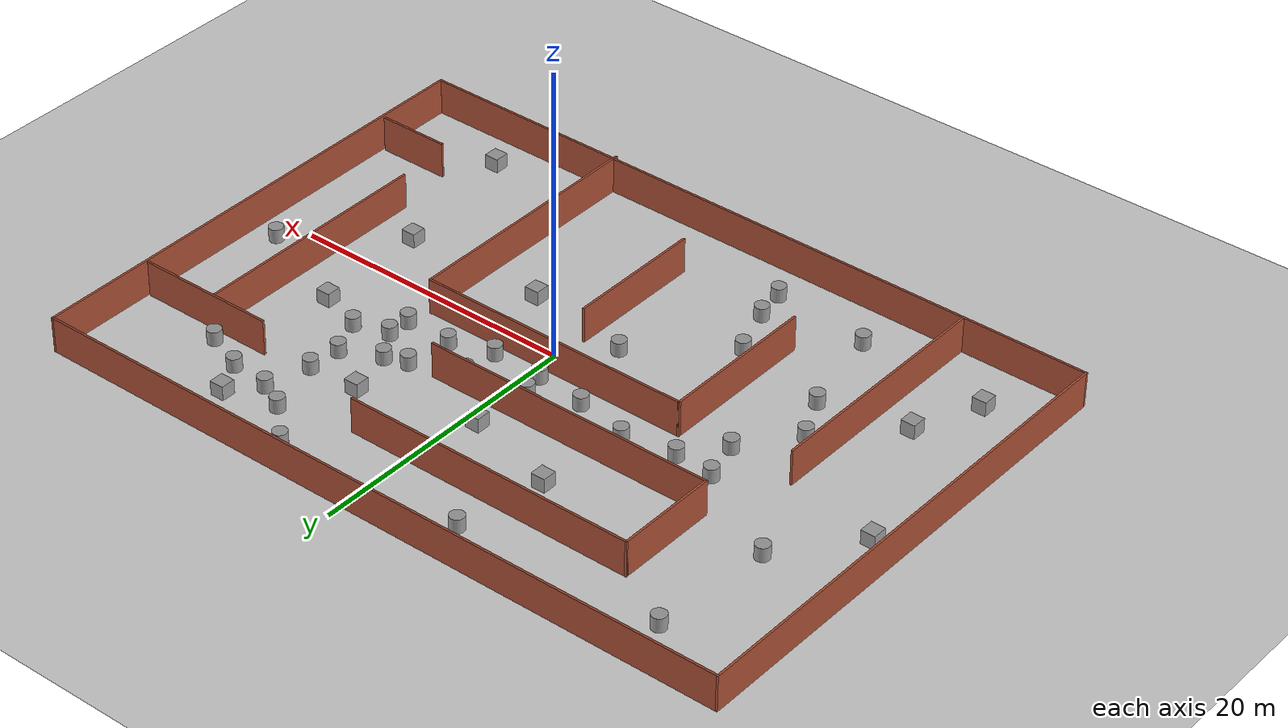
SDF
<sdf version="1.7">
 <world name="default">
  <light name="sun" type="directional">
   <pose>0 0 10 0 -0 0</pose>
   <diffuse>0.8 0.8 0.8 1</diffuse>
   <specular>0.2 0.2 0.2 1</specular>
   <attenuation>
    <range>1000</range>
    <constant>0.9</constant>
    <linear>0.01</linear>
    <quadratic>0.001</quadratic>
   </attenuation>
   <direction>-0.5 0.1 -0.9</direction>
   <spot><inner_angle>0</inner_angle><outer_angle>0</outer_angle><falloff>0</falloff></spot>
  </light>
  <model name="ground_plane">
   <static>1</static>
   <link name="link">
    <collision name="collision">
     <geometry><plane><normal>0 0 1</normal><size>100 100</size></plane></geometry>
     <surface><friction><ode><mu>100</mu><mu2>50</mu2></ode></friction></surface>
    </collision>
    <visual name="visual">
     <cast_shadows>0</cast_shadows>
     <geometry><plane><normal>0 0 1</normal><size>100 100</size></plane></geometry>
     <material>
      <script><uri>file://media/materials/scripts/gazebo.material</uri><name>Gazebo/Grey</name></script>
     </material>
    </visual>
   </link>
  </model>
  <gravity>0 0 -9.8</gravity>
  <magnetic_field>6e-06 2.3e-05 -4.2e-05</magnetic_field>
  <atmosphere type="adiabatic"/>
  <physics type="ode">
   <max_step_size>0.001</max_step_size>
   <real_time_factor>1</real_time_factor>
   <real_time_update_rate>1000</real_time_update_rate>
  </physics>
  <scene><ambient>0.4 0.4 0.4 1</ambient><background>0.7 0.7 0.7 1</background><shadows>1</shadows></scene>
  <spherical_coordinates>
   <surface_model>EARTH_WGS84</surface_model>
   <latitude_deg>0</latitude_deg>
   <longitude_deg>0</longitude_deg>
   <elevation>0</elevation>
   <heading_deg>0</heading_deg>
  </spherical_coordinates>
  <model name="teb_world">
   <pose>-1.9036 1.21909 0 0 -0 0</pose>
   <link name="Wall_10">
    <collision name="Wall_10_Collision">
     <geometry><box><size>7.25 0.15 2.5</size></box></geometry>
     <pose>0 0 1.25 0 -0 0</pose>
    </collision>
    <visual name="Wall_10_Visual">
     <pose>0 0 1.25 0 -0 0</pose>
     <geometry><box><size>7.25 0.15 2.5</size></box></geometry>
     <material>
      <script><uri>file://media/materials/scripts/gazebo.material</uri><name>Gazebo/Bricks</name></script>
      <ambient>1 1 1 1</ambient>
     </material>
     <meta><layer>0</layer></meta>
    </visual>
    <pose>-14.5047 8.54185 0 0 -0 -1.5708</pose>
   </link>
   <link name="Wall_11">
    <collision name="Wall_11_Collision">
     <geometry><box><size>20.75 0.15 2.5</size></box></geometry>
     <pose>0 0 1.25 0 -0 0</pose>
    </collision>
    <visual name="Wall_11_Visual">
     <pose>0 0 1.25 0 -0 0</pose>
     <geometry><box><size>20.75 0.15 2.5</size></box></geometry>
     <material>
      <script><uri>file://media/materials/scripts/gazebo.material</uri><name>Gazebo/Bricks</name></script>
      <ambient>1 1 1 1</ambient>
     </material>
     <meta><layer>0</layer></meta>
    </visual>
    <pose>-4.20469 4.99185 0 0 -0 0</pose>
   </link>
   <link name="Wall_14">
    <collision name="Wall_14_Collision">
     <geometry><box><size>17 0.15 2.5</size></box></geometry>
     <pose>0 0 1.25 0 -0 0</pose>
    </collision>
    <visual name="Wall_14_Visual">
     <pose>0 0 1.25 0 -0 0</pose>
     <geometry><box><size>17 0.15 2.5</size></box></geometry>
     <material>
      <script><uri>file://media/materials/scripts/gazebo.material</uri><name>Gazebo/Bricks</name></script>
      <ambient>1 1 1 1</ambient>
     </material>
     <meta><layer>0</layer></meta>
    </visual>
    <pose>-16.5669 -8.83489 0 0 -0 -1.5708</pose>
   </link>
   <link name="Wall_16">
    <collision name="Wall_16_Collision">
     <geometry><box><size>19.5 0.15 2.5</size></box></geometry>
     <pose>0 0 1.25 0 -0 0</pose>
    </collision>
    <visual name="Wall_16_Visual">
     <pose>0 0 1.25 0 -0 0</pose>
     <geometry><box><size>19.5 0.15 2.5</size></box></geometry>
     <material>
      <script><uri>file://media/materials/scripts/gazebo.material</uri><name>Gazebo/Bricks</name></script>
      <ambient>1 1 1 1</ambient>
     </material>
     <meta><layer>0</layer></meta>
    </visual>
    <pose>0.935569 0.159379 0 0 -0 0</pose>
   </link>
   <link name="Wall_17">
    <collision name="Wall_17_Collision">
     <geometry><box><size>18 0.15 2.5</size></box></geometry>
     <pose>0 0 1.25 0 -0 0</pose>
    </collision>
    <visual name="Wall_17_Visual">
     <pose>0 0 1.25 0 -0 0</pose>
     <geometry><box><size>18 0.15 2.5</size></box></geometry>
     <material>
      <script><uri>file://media/materials/scripts/gazebo.material</uri><name>Gazebo/Bricks</name></script>
      <ambient>1 1 1 1</ambient>
     </material>
     <meta><layer>0</layer></meta>
    </visual>
    <pose>10.6106 -8.76562 0 0 -0 -1.5708</pose>
   </link>
   <link name="Wall_19">
    <collision name="Wall_19_Collision">
     <geometry><box><size>11.25 0.15 2.5</size></box></geometry>
     <pose>0 0 1.25 0 -0 0</pose>
    </collision>
    <visual name="Wall_19_Visual">
     <pose>0 0 1.25 0 -0 0</pose>
     <geometry><box><size>11.25 0.15 2.5</size></box></geometry>
     <material>
      <script><uri>file://media/materials/scripts/gazebo.material</uri><name>Gazebo/Bricks</name></script>
      <ambient>1 1 1 1</ambient>
     </material>
     <meta><layer>0</layer></meta>
    </visual>
    <pose>-8.73943 -5.39062 0 0 -0 -1.5708</pose>
   </link>
   <link name="Wall_22">
    <collision name="Wall_22_Collision">
     <geometry><box><size>9.75 0.15 2.5</size></box></geometry>
     <pose>0 0 1.25 0 -0 0</pose>
    </collision>
    <visual name="Wall_22_Visual">
     <pose>0 0 1.25 0 -0 0</pose>
     <geometry><box><size>9.75 0.15 2.5</size></box></geometry>
     <material>
      <script><uri>file://media/materials/scripts/gazebo.material</uri><name>Gazebo/Bricks</name></script>
      <ambient>1 1 1 1</ambient>
     </material>
     <meta><layer>0</layer></meta>
    </visual>
    <pose>20.2546 9.83698 0 0 -0 0</pose>
   </link>
   <link name="Wall_24">
    <collision name="Wall_24_Collision">
     <geometry><box><size>17.25 0.15 2.5</size></box></geometry>
     <pose>0 0 1.25 0 -0 0</pose>
    </collision>
    <visual name="Wall_24_Visual">
     <pose>0 0 1.25 0 -0 0</pose>
     <geometry><box><size>17.25 0.15 2.5</size></box></geometry>
     <material>
      <script><uri>file://media/materials/scripts/gazebo.material</uri><name>Gazebo/Bricks</name></script>
      <ambient>1 1 1 1</ambient>
     </material>
     <meta><layer>0</layer></meta>
    </visual>
    <pose>19.5818 1.14467 0 0 -0 -1.5708</pose>
   </link>
   <link name="Wall_26">
    <collision name="Wall_26_Collision">
     <geometry><box><size>5 0.15 2.5</size></box></geometry>
     <pose>0 0 1.25 0 -0 0</pose>
    </collision>
    <visual name="Wall_26_Visual">
     <pose>0 0 1.25 0 -0 0</pose>
     <geometry><box><size>5 0.15 2.5</size></box></geometry>
     <material>
      <script><uri>file://media/materials/scripts/gazebo.material</uri><name>Gazebo/Bricks</name></script>
      <ambient>1 1 1 1</ambient>
     </material>
     <meta><layer>0</layer></meta>
    </visual>
    <pose>22.5761 -11.653 0 0 -0 0</pose>
   </link>
   <link name="Wall_28">
    <collision name="Wall_28_Collision">
     <geometry><box><size>9.75 0.15 2.5</size></box></geometry>
     <pose>0 0 1.25 0 -0 0</pose>
    </collision>
    <visual name="Wall_28_Visual">
     <pose>0 0 1.25 0 -0 0</pose>
     <geometry><box><size>9.75 0.15 2.5</size></box></geometry>
     <material>
      <script><uri>file://media/materials/scripts/gazebo.material</uri><name>Gazebo/Bricks</name></script>
      <ambient>1 1 1 1</ambient>
     </material>
     <meta><layer>0</layer></meta>
    </visual>
    <pose>1.50744 -8.34088 0 0 -0 -1.5708</pose>
   </link>
   <link name="Wall_4">
    <collision name="Wall_4_Collision">
     <geometry><box><size>50.75 0.15 2.5</size></box></geometry>
     <pose>0 0 1.25 0 -0 0</pose>
    </collision>
    <visual name="Wall_4_Visual">
     <pose>0 0 1.25 0 -0 0</pose>
     <geometry><box><size>50.75 0.15 2.5</size></box></geometry>
     <material>
      <script><uri>file://media/materials/scripts/gazebo.material</uri><name>Gazebo/Bricks</name></script>
      <ambient>1 1 1 1</ambient>
     </material>
     <meta><layer>0</layer></meta>
    </visual>
    <pose>0 17.6906 0 0 -0 0</pose>
   </link>
   <link name="Wall_5">
    <collision name="Wall_5_Collision">
     <geometry><box><size>35.25 0.15 2.5</size></box></geometry>
     <pose>0 0 1.25 0 -0 0</pose>
    </collision>
    <visual name="Wall_5_Visual">
     <pose>0 0 1.25 0 -0 0</pose>
     <geometry><box><size>35.25 0.15 2.5</size></box></geometry>
     <material>
      <script><uri>file://media/materials/scripts/gazebo.material</uri><name>Gazebo/Bricks</name></script>
      <ambient>1 1 1 1</ambient>
     </material>
     <meta><layer>0</layer></meta>
    </visual>
    <pose>25.3 0.140621 0 0 -0 -1.5708</pose>
   </link>
   <link name="Wall_6">
    <collision name="Wall_6_Collision">
     <geometry><box><size>50.75 0.15 2.5</size></box></geometry>
     <pose>0 0 1.25 0 -0 0</pose>
    </collision>
    <visual name="Wall_6_Visual">
     <pose>0 0 1.25 0 -0 0</pose>
     <geometry><box><size>50.75 0.15 2.5</size></box></geometry>
     <material>
      <script><uri>file://media/materials/scripts/gazebo.material</uri><name>Gazebo/Bricks</name></script>
      <ambient>1 1 1 1</ambient>
     </material>
     <meta><layer>0</layer></meta>
    </visual>
    <pose>0 -17.4094 0 0 -0 3.14159</pose>
   </link>
   <link name="Wall_7">
    <collision name="Wall_7_Collision">
     <geometry><box><size>35.25 0.15 2.5</size></box></geometry>
     <pose>0 0 1.25 0 -0 0</pose>
    </collision>
    <visual name="Wall_7_Visual">
     <pose>0 0 1.25 0 -0 0</pose>
     <geometry><box><size>35.25 0.15 2.5</size></box></geometry>
     <material>
      <script><uri>file://media/materials/scripts/gazebo.material</uri><name>Gazebo/Bricks</name></script>
      <ambient>1 1 1 1</ambient>
     </material>
     <meta><layer>0</layer></meta>
    </visual>
    <pose>-25.3 0.140621 0 0 -0 1.5708</pose>
   </link>
   <link name="Wall_9">
    <collision name="Wall_9_Collision">
     <geometry><box><size>20.75 0.15 2.5</size></box></geometry>
     <pose>0 0 1.25 0 -0 0</pose>
    </collision>
    <visual name="Wall_9_Visual">
     <pose>0 0 1.25 0 -0 0</pose>
     <geometry><box><size>20.75 0.15 2.5</size></box></geometry>
     <material>
      <script><uri>file://media/materials/scripts/gazebo.material</uri><name>Gazebo/Bricks</name></script>
      <ambient>1 1 1 1</ambient>
     </material>
     <meta><layer>0</layer></meta>
    </visual>
    <pose>-4.20469 12.0918 0 0 -0 3.14159</pose>
   </link>
   <static>1</static>
  </model>
  <model name="unit_cylinder">
   <pose>-6.69066 -13.4698 0.499992 -3e-06 2e-06 0</pose>
   <link name="link">
    <inertial>
     <mass>1</mass>
     <inertia><ixx>0.145833</ixx><ixy>0</ixy><ixz>0</ixz><iyy>0.145833</iyy><iyz>0</iyz><izz>0.125</izz></inertia>
    </inertial>
    <collision name="collision">
     <geometry><cylinder><radius>0.5</radius><length>1</length></cylinder></geometry>
    </collision>
    <visual name="visual">
     <geometry><cylinder><radius>0.5</radius><length>1</length></cylinder></geometry>
     <material>
      <script><name>Gazebo/Grey</name><uri>file://media/materials/scripts/gazebo.material</uri></script>
     </material>
    </visual>
   </link>
  </model>
  <model name="unit_cylinder_0">
   <pose>-13.6322 -12.7486 0.499998 3e-06 -2e-06 0</pose>
   <link name="link">
    <inertial>
     <mass>1</mass>
     <inertia><ixx>0.145833</ixx><ixy>0</ixy><ixz>0</ixz><iyy>0.145833</iyy><iyz>0</iyz><izz>0.125</izz></inertia>
    </inertial>
    <collision name="collision">
     <geometry><cylinder><radius>0.5</radius><length>1</length></cylinder></geometry>
    </collision>
    <visual name="visual">
     <geometry><cylinder><radius>0.5</radius><length>1</length></cylinder></geometry>
     <material>
      <script><name>Gazebo/Grey</name><uri>file://media/materials/scripts/gazebo.material</uri></script>
     </material>
    </visual>
   </link>
  </model>
  <model name="unit_cylinder_1">
   <pose>-15.0646 -6.21021 0.499998 3e-06 -2e-06 0</pose>
   <link name="link">
    <inertial>
     <mass>1</mass>
     <inertia><ixx>0.145833</ixx><ixy>0</ixy><ixz>0</ixz><iyy>0.145833</iyy><iyz>0</iyz><izz>0.125</izz></inertia>
    </inertial>
    <collision name="collision">
     <geometry><cylinder><radius>0.5</radius><length>1</length></cylinder></geometry>
    </collision>
    <visual name="visual">
     <geometry><cylinder><radius>0.5</radius><length>1</length></cylinder></geometry>
     <material>
      <script><name>Gazebo/Grey</name><uri>file://media/materials/scripts/gazebo.material</uri></script>
     </material>
    </visual>
   </link>
  </model>
  <model name="unit_cylinder_2">
   <pose>-14.6046 3.33713 0.499997 3e-06 2e-06 0</pose>
   <link name="link">
    <inertial>
     <mass>1</mass>
     <inertia><ixx>0.145833</ixx><ixy>0</ixy><ixz>0</ixz><iyy>0.145833</iyy><iyz>0</iyz><izz>0.125</izz></inertia>
    </inertial>
    <collision name="collision">
     <geometry><cylinder><radius>0.5</radius><length>1</length></cylinder></geometry>
    </collision>
    <visual name="visual">
     <geometry><cylinder><radius>0.5</radius><length>1</length></cylinder></geometry>
     <material>
      <script><name>Gazebo/Grey</name><uri>file://media/materials/scripts/gazebo.material</uri></script>
     </material>
    </visual>
   </link>
  </model>
  <model name="unit_box">
   <pose>-22.8413 -12.1652 0.499995 0 -1e-05 0</pose>
   <link name="link">
    <inertial>
     <mass>1</mass>
     <inertia>
      <ixx>0.166667</ixx>
      <ixy>0</ixy>
      <ixz>0</ixz>
      <iyy>0.166667</iyy>
      <iyz>0</iyz>
      <izz>0.166667</izz>
     </inertia>
    </inertial>
    <collision name="collision"><geometry><box><size>1 1 1</size></box></geometry></collision>
    <visual name="visual">
     <geometry><box><size>1 1 1</size></box></geometry>
     <material>
      <script><name>Gazebo/Grey</name><uri>file://media/materials/scripts/gazebo.material</uri></script>
     </material>
    </visual>
   </link>
  </model>
  <model name="unit_box_0">
   <pose>-20.9247 -7.65712 0.499995 -1e-05 0 0</pose>
   <link name="link">
    <inertial>
     <mass>1</mass>
     <inertia>
      <ixx>0.166667</ixx>
      <ixy>0</ixy>
      <ixz>0</ixz>
      <iyy>0.166667</iyy>
      <iyz>0</iyz>
      <izz>0.166667</izz>
     </inertia>
    </inertial>
    <collision name="collision"><geometry><box><size>1 1 1</size></box></geometry></collision>
    <visual name="visual">
     <geometry><box><size>1 1 1</size></box></geometry>
     <material>
      <script><name>Gazebo/Grey</name><uri>file://media/materials/scripts/gazebo.material</uri></script>
     </material>
    </visual>
   </link>
  </model>
  <model name="unit_box_1">
   <pose>-25.1898 2.11963 0.499995 0 -1e-05 0</pose>
   <link name="link">
    <inertial>
     <mass>1</mass>
     <inertia>
      <ixx>0.166667</ixx>
      <ixy>0</ixy>
      <ixz>0</ixz>
      <iyy>0.166667</iyy>
      <iyz>0</iyz>
      <izz>0.166667</izz>
     </inertia>
    </inertial>
    <collision name="collision"><geometry><box><size>1 1 1</size></box></geometry></collision>
    <visual name="visual">
     <geometry><box><size>1 1 1</size></box></geometry>
     <material>
      <script><name>Gazebo/Grey</name><uri>file://media/materials/scripts/gazebo.material</uri></script>
     </material>
    </visual>
   </link>
  </model>
  <model name="unit_cylinder_3">
   <pose>-21.2014 7.10299 0.499992 -3e-06 2e-06 0</pose>
   <link name="link">
    <inertial>
     <mass>1</mass>
     <inertia><ixx>0.145833</ixx><ixy>0</ixy><ixz>0</ixz><iyy>0.145833</iyy><iyz>0</iyz><izz>0.125</izz></inertia>
    </inertial>
    <collision name="collision">
     <geometry><cylinder><radius>0.5</radius><length>1</length></cylinder></geometry>
    </collision>
    <visual name="visual">
     <geometry><cylinder><radius>0.5</radius><length>1</length></cylinder></geometry>
     <material>
      <script><name>Gazebo/Grey</name><uri>file://media/materials/scripts/gazebo.material</uri></script>
     </material>
    </visual>
   </link>
  </model>
  <model name="unit_cylinder_4">
   <pose>-20.5482 15.5499 0.499994 -4e-06 -2e-06 -0</pose>
   <link name="link">
    <inertial>
     <mass>1</mass>
     <inertia><ixx>0.145833</ixx><ixy>0</ixy><ixz>0</ixz><iyy>0.145833</iyy><iyz>0</iyz><izz>0.125</izz></inertia>
    </inertial>
    <collision name="collision">
     <geometry><cylinder><radius>0.5</radius><length>1</length></cylinder></geometry>
    </collision>
    <visual name="visual">
     <geometry><cylinder><radius>0.5</radius><length>1</length></cylinder></geometry>
     <material>
      <script><name>Gazebo/Grey</name><uri>file://media/materials/scripts/gazebo.material</uri></script>
     </material>
    </visual>
   </link>
  </model>
  <model name="unit_box_2">
   <pose>-7.62954 10.0706 0.499995 -1e-05 0 0</pose>
   <link name="link">
    <inertial>
     <mass>1</mass>
     <inertia>
      <ixx>0.166667</ixx>
      <ixy>0</ixy>
      <ixz>0</ixz>
      <iyy>0.166667</iyy>
      <iyz>0</iyz>
      <izz>0.166667</izz>
     </inertia>
    </inertial>
    <collision name="collision"><geometry><box><size>1 1 1</size></box></geometry></collision>
    <visual name="visual">
     <geometry><box><size>1 1 1</size></box></geometry>
     <material>
      <script><name>Gazebo/Grey</name><uri>file://media/materials/scripts/gazebo.material</uri></script>
     </material>
    </visual>
   </link>
  </model>
  <model name="unit_cylinder_5">
   <pose>-6.41047 16.1659 0.499997 4e-06 3e-06 -0</pose>
   <link name="link">
    <inertial>
     <mass>1</mass>
     <inertia><ixx>0.145833</ixx><ixy>0</ixy><ixz>0</ixz><iyy>0.145833</iyy><iyz>0</iyz><izz>0.125</izz></inertia>
    </inertial>
    <collision name="collision">
     <geometry><cylinder><radius>0.5</radius><length>1</length></cylinder></geometry>
    </collision>
    <visual name="visual">
     <geometry><cylinder><radius>0.5</radius><length>1</length></cylinder></geometry>
     <material>
      <script><name>Gazebo/Grey</name><uri>file://media/materials/scripts/gazebo.material</uri></script>
     </material>
    </visual>
   </link>
  </model>
  <model name="unit_box_3">
   <pose>-0.996435 8.20843 0.499995 -1e-05 0 0</pose>
   <link name="link">
    <inertial>
     <mass>1</mass>
     <inertia>
      <ixx>0.166667</ixx>
      <ixy>0</ixy>
      <ixz>0</ixz>
      <iyy>0.166667</iyy>
      <iyz>0</iyz>
      <izz>0.166667</izz>
     </inertia>
    </inertial>
    <collision name="collision"><geometry><box><size>1 1 1</size></box></geometry></collision>
    <visual name="visual">
     <geometry><box><size>1 1 1</size></box></geometry>
     <material>
      <script><name>Gazebo/Grey</name><uri>file://media/materials/scripts/gazebo.material</uri></script>
     </material>
    </visual>
   </link>
  </model>
  <model name="unit_box_4">
   <pose>4.66809 -3.84066 0.499995 0 -1e-05 0</pose>
   <link name="link">
    <inertial>
     <mass>1</mass>
     <inertia>
      <ixx>0.166667</ixx>
      <ixy>0</ixy>
      <ixz>0</ixz>
      <iyy>0.166667</iyy>
      <iyz>0</iyz>
      <izz>0.166667</izz>
     </inertia>
    </inertial>
    <collision name="collision"><geometry><box><size>1 1 1</size></box></geometry></collision>
    <visual name="visual">
     <geometry><box><size>1 1 1</size></box></geometry>
     <material>
      <script><name>Gazebo/Grey</name><uri>file://media/materials/scripts/gazebo.material</uri></script>
     </material>
    </visual>
   </link>
  </model>
  <model name="unit_box_5">
   <pose>6.72621 10.2693 0.499995 -1e-05 0 0</pose>
   <link name="link">
    <inertial>
     <mass>1</mass>
     <inertia>
      <ixx>0.166667</ixx>
      <ixy>0</ixy>
      <ixz>0</ixz>
      <iyy>0.166667</iyy>
      <iyz>0</iyz>
      <izz>0.166667</izz>
     </inertia>
    </inertial>
    <collision name="collision"><geometry><box><size>1 1 1</size></box></geometry></collision>
    <visual name="visual">
     <geometry><box><size>1 1 1</size></box></geometry>
     <material>
      <script><name>Gazebo/Grey</name><uri>file://media/materials/scripts/gazebo.material</uri></script>
     </material>
    </visual>
   </link>
  </model>
  <model name="unit_box_6">
   <pose>14.3397 4.54222 0.499995 0 -1e-05 0</pose>
   <link name="link">
    <inertial>
     <mass>1</mass>
     <inertia>
      <ixx>0.166667</ixx>
      <ixy>0</ixy>
      <ixz>0</ixz>
      <iyy>0.166667</iyy>
      <iyz>0</iyz>
      <izz>0.166667</izz>
     </inertia>
    </inertial>
    <collision name="collision"><geometry><box><size>1 1 1</size></box></geometry></collision>
    <visual name="visual">
     <geometry><box><size>1 1 1</size></box></geometry>
     <material>
      <script><name>Gazebo/Grey</name><uri>file://media/materials/scripts/gazebo.material</uri></script>
     </material>
    </visual>
   </link>
  </model>
  <model name="unit_box_7">
   <pose>14.6556 -3.63304 0.499995 -1e-05 0 0</pose>
   <link name="link">
    <inertial>
     <mass>1</mass>
     <inertia>
      <ixx>0.166667</ixx>
      <ixy>0</ixy>
      <ixz>0</ixz>
      <iyy>0.166667</iyy>
      <iyz>0</iyz>
      <izz>0.166667</izz>
     </inertia>
    </inertial>
    <collision name="collision"><geometry><box><size>1 1 1</size></box></geometry></collision>
    <visual name="visual">
     <geometry><box><size>1 1 1</size></box></geometry>
     <material>
      <script><name>Gazebo/Grey</name><uri>file://media/materials/scripts/gazebo.material</uri></script>
     </material>
    </visual>
   </link>
  </model>
  <model name="unit_box_8">
   <pose>16.271 -13.4935 0.499995 0 -1e-05 0</pose>
   <link name="link">
    <inertial>
     <mass>1</mass>
     <inertia>
      <ixx>0.166667</ixx>
      <ixy>0</ixy>
      <ixz>0</ixz>
      <iyy>0.166667</iyy>
      <iyz>0</iyz>
      <izz>0.166667</izz>
     </inertia>
    </inertial>
    <collision name="collision"><geometry><box><size>1 1 1</size></box></geometry></collision>
    <visual name="visual">
     <geometry><box><size>1 1 1</size></box></geometry>
     <material>
      <script><name>Gazebo/Grey</name><uri>file://media/materials/scripts/gazebo.material</uri></script>
     </material>
    </visual>
   </link>
  </model>
  <model name="unit_cylinder_6">
   <pose>21.4662 1.66949 0.499994 -4e-06 -4e-06 -0</pose>
   <link name="link">
    <inertial>
     <mass>1</mass>
     <inertia><ixx>0.145833</ixx><ixy>0</ixy><ixz>0</ixz><iyy>0.145833</iyy><iyz>0</iyz><izz>0.125</izz></inertia>
    </inertial>
    <collision name="collision">
     <geometry><cylinder><radius>0.5</radius><length>1</length></cylinder></geometry>
    </collision>
    <visual name="visual">
     <geometry><cylinder><radius>0.5</radius><length>1</length></cylinder></geometry>
     <material>
      <script><name>Gazebo/Grey</name><uri>file://media/materials/scripts/gazebo.material</uri></script>
     </material>
    </visual>
   </link>
  </model>
  <model name="unit_box_9">
   <pose>12.6814 15.5395 0.499995 0 -1e-05 0</pose>
   <link name="link">
    <inertial>
     <mass>1</mass>
     <inertia>
      <ixx>0.166667</ixx>
      <ixy>0</ixy>
      <ixz>0</ixz>
      <iyy>0.166667</iyy>
      <iyz>0</iyz>
      <izz>0.166667</izz>
     </inertia>
    </inertial>
    <collision name="collision"><geometry><box><size>1 1 1</size></box></geometry></collision>
    <visual name="visual">
     <geometry><box><size>1 1 1</size></box></geometry>
     <material>
      <script><name>Gazebo/Grey</name><uri>file://media/materials/scripts/gazebo.material</uri></script>
     </material>
    </visual>
   </link>
  </model>
  <model name="unit_cylinder_7">
   <pose>6.67108 16.913 0.499994 -4e-06 -3e-06 -0</pose>
   <link name="link">
    <inertial>
     <mass>1</mass>
     <inertia><ixx>0.145833</ixx><ixy>0</ixy><ixz>0</ixz><iyy>0.145833</iyy><iyz>0</iyz><izz>0.125</izz></inertia>
    </inertial>
    <collision name="collision">
     <geometry><cylinder><radius>0.5</radius><length>1</length></cylinder></geometry>
    </collision>
    <visual name="visual">
     <geometry><cylinder><radius>0.5</radius><length>1</length></cylinder></geometry>
     <material>
      <script><name>Gazebo/Grey</name><uri>file://media/materials/scripts/gazebo.material</uri></script>
     </material>
    </visual>
   </link>
  </model>
  <model name="unit_cylinder_8">
   <pose>8.93256 4.89023 0.499994 -4e-06 -3e-06 -0</pose>
   <link name="link">
    <inertial>
     <mass>1</mass>
     <inertia><ixx>0.145833</ixx><ixy>0</ixy><ixz>0</ixz><iyy>0.145833</iyy><iyz>0</iyz><izz>0.125</izz></inertia>
    </inertial>
    <collision name="collision">
     <geometry><cylinder><radius>0.5</radius><length>1</length></cylinder></geometry>
    </collision>
    <visual name="visual">
     <geometry><cylinder><radius>0.5</radius><length>1</length></cylinder></geometry>
     <material>
      <script><name>Gazebo/Grey</name><uri>file://media/materials/scripts/gazebo.material</uri></script>
     </material>
    </visual>
   </link>
  </model>
  <model name="unit_cylinder_9">
   <pose>-11.8665 3.13585 0.499998 3e-06 -2e-06 0</pose>
   <link name="link">
    <inertial>
     <mass>1</mass>
     <inertia><ixx>0.145833</ixx><ixy>0</ixy><ixz>0</ixz><iyy>0.145833</iyy><iyz>0</iyz><izz>0.125</izz></inertia>
    </inertial>
    <collision name="collision">
     <geometry><cylinder><radius>0.5</radius><length>1</length></cylinder></geometry>
    </collision>
    <visual name="visual">
     <geometry><cylinder><radius>0.5</radius><length>1</length></cylinder></geometry>
     <material>
      <script><name>Gazebo/Grey</name><uri>file://media/materials/scripts/gazebo.material</uri></script>
     </material>
    </visual>
   </link>
  </model>
  <model name="unit_cylinder_10">
   <pose>-8.25499 3.78509 0.499998 3e-06 -2e-06 0</pose>
   <link name="link">
    <inertial>
     <mass>1</mass>
     <inertia><ixx>0.145833</ixx><ixy>0</ixy><ixz>0</ixz><iyy>0.145833</iyy><iyz>0</iyz><izz>0.125</izz></inertia>
    </inertial>
    <collision name="collision">
     <geometry><cylinder><radius>0.5</radius><length>1</length></cylinder></geometry>
    </collision>
    <visual name="visual">
     <geometry><cylinder><radius>0.5</radius><length>1</length></cylinder></geometry>
     <material>
      <script><name>Gazebo/Grey</name><uri>file://media/materials/scripts/gazebo.material</uri></script>
     </material>
    </visual>
   </link>
  </model>
  <model name="unit_cylinder_11">
   <pose>-4.47669 2.88766 0.499998 3e-06 -2e-06 0</pose>
   <link name="link">
    <inertial>
     <mass>1</mass>
     <inertia><ixx>0.145833</ixx><ixy>0</ixy><ixz>0</ixz><iyy>0.145833</iyy><iyz>0</iyz><izz>0.125</izz></inertia>
    </inertial>
    <collision name="collision">
     <geometry><cylinder><radius>0.5</radius><length>1</length></cylinder></geometry>
    </collision>
    <visual name="visual">
     <geometry><cylinder><radius>0.5</radius><length>1</length></cylinder></geometry>
     <material>
      <script><name>Gazebo/Grey</name><uri>file://media/materials/scripts/gazebo.material</uri></script>
     </material>
    </visual>
   </link>
  </model>
  <model name="unit_cylinder_12">
   <pose>-4.24571 5.5082 0.501861 -0.00296 0.002277 0.558754</pose>
   <link name="link">
    <inertial>
     <mass>1</mass>
     <inertia><ixx>0.145833</ixx><ixy>0</ixy><ixz>0</ixz><iyy>0.145833</iyy><iyz>0</iyz><izz>0.125</izz></inertia>
    </inertial>
    <collision name="collision">
     <geometry><cylinder><radius>0.5</radius><length>1</length></cylinder></geometry>
    </collision>
    <visual name="visual">
     <geometry><cylinder><radius>0.5</radius><length>1</length></cylinder></geometry>
     <material>
      <script><name>Gazebo/Grey</name><uri>file://media/materials/scripts/gazebo.material</uri></script>
     </material>
    </visual>
   </link>
  </model>
  <model name="unit_cylinder_13">
   <pose>-0.875947 2.42352 0.499993 -3e-06 2e-06 0</pose>
   <link name="link">
    <inertial>
     <mass>1</mass>
     <inertia><ixx>0.145833</ixx><ixy>0</ixy><ixz>0</ixz><iyy>0.145833</iyy><iyz>0</iyz><izz>0.125</izz></inertia>
    </inertial>
    <collision name="collision">
     <geometry><cylinder><radius>0.5</radius><length>1</length></cylinder></geometry>
    </collision>
    <visual name="visual">
     <geometry><cylinder><radius>0.5</radius><length>1</length></cylinder></geometry>
     <material>
      <script><name>Gazebo/Grey</name><uri>file://media/materials/scripts/gazebo.material</uri></script>
     </material>
    </visual>
   </link>
  </model>
  <model name="unit_cylinder_14">
   <pose>-1.30344 4.07202 0.503957 -0.005635 -0.005606 -0.591629</pose>
   <link name="link">
    <inertial>
     <mass>1</mass>
     <inertia><ixx>0.145833</ixx><ixy>0</ixy><ixz>0</ixz><iyy>0.145833</iyy><iyz>0</iyz><izz>0.125</izz></inertia>
    </inertial>
    <collision name="collision">
     <geometry><cylinder><radius>0.5</radius><length>1</length></cylinder></geometry>
    </collision>
    <visual name="visual">
     <geometry><cylinder><radius>0.5</radius><length>1</length></cylinder></geometry>
     <material>
      <script><name>Gazebo/Grey</name><uri>file://media/materials/scripts/gazebo.material</uri></script>
     </material>
    </visual>
   </link>
  </model>
  <model name="unit_cylinder_15">
   <pose>5.57743 3.32364 0.499998 3e-06 -2e-06 0</pose>
   <link name="link">
    <inertial>
     <mass>1</mass>
     <inertia><ixx>0.145833</ixx><ixy>0</ixy><ixz>0</ixz><iyy>0.145833</iyy><iyz>0</iyz><izz>0.125</izz></inertia>
    </inertial>
    <collision name="collision">
     <geometry><cylinder><radius>0.5</radius><length>1</length></cylinder></geometry>
    </collision>
    <visual name="visual">
     <geometry><cylinder><radius>0.5</radius><length>1</length></cylinder></geometry>
     <material>
      <script><name>Gazebo/Grey</name><uri>file://media/materials/scripts/gazebo.material</uri></script>
     </material>
    </visual>
   </link>
  </model>
  <model name="unit_cylinder_16">
   <pose>7.55521 6.94223 0.499993 -3e-06 2e-06 0</pose>
   <link name="link">
    <inertial>
     <mass>1</mass>
     <inertia><ixx>0.145833</ixx><ixy>0</ixy><ixz>0</ixz><iyy>0.145833</iyy><iyz>0</iyz><izz>0.125</izz></inertia>
    </inertial>
    <collision name="collision">
     <geometry><cylinder><radius>0.5</radius><length>1</length></cylinder></geometry>
    </collision>
    <visual name="visual">
     <geometry><cylinder><radius>0.5</radius><length>1</length></cylinder></geometry>
     <material>
      <script><name>Gazebo/Grey</name><uri>file://media/materials/scripts/gazebo.material</uri></script>
     </material>
    </visual>
   </link>
  </model>
  <model name="unit_cylinder_17">
   <pose>10.1246 8.17529 0.499993 -3e-06 2e-06 0</pose>
   <link name="link">
    <inertial>
     <mass>1</mass>
     <inertia><ixx>0.145833</ixx><ixy>0</ixy><ixz>0</ixz><iyy>0.145833</iyy><iyz>0</iyz><izz>0.125</izz></inertia>
    </inertial>
    <collision name="collision">
     <geometry><cylinder><radius>0.5</radius><length>1</length></cylinder></geometry>
    </collision>
    <visual name="visual">
     <geometry><cylinder><radius>0.5</radius><length>1</length></cylinder></geometry>
     <material>
      <script><name>Gazebo/Grey</name><uri>file://media/materials/scripts/gazebo.material</uri></script>
     </material>
    </visual>
   </link>
  </model>
  <model name="unit_cylinder_18">
   <pose>10.2761 10.4751 0.499997 4e-06 1e-06 0.148765</pose>
   <link name="link">
    <inertial>
     <mass>1</mass>
     <inertia><ixx>0.145833</ixx><ixy>0</ixy><ixz>0</ixz><iyy>0.145833</iyy><iyz>0</iyz><izz>0.125</izz></inertia>
    </inertial>
    <collision name="collision">
     <geometry><cylinder><radius>0.5</radius><length>1</length></cylinder></geometry>
    </collision>
    <visual name="visual">
     <geometry><cylinder><radius>0.5</radius><length>1</length></cylinder></geometry>
     <material>
      <script><name>Gazebo/Grey</name><uri>file://media/materials/scripts/gazebo.material</uri></script>
     </material>
    </visual>
   </link>
  </model>
  <model name="unit_cylinder_19">
   <pose>13.9012 13.276 0.508134 0.001414 0.016344 0.894046</pose>
   <link name="link">
    <inertial>
     <mass>1</mass>
     <inertia><ixx>0.145833</ixx><ixy>0</ixy><ixz>0</ixz><iyy>0.145833</iyy><iyz>0</iyz><izz>0.125</izz></inertia>
    </inertial>
    <collision name="collision">
     <geometry><cylinder><radius>0.5</radius><length>1</length></cylinder></geometry>
    </collision>
    <visual name="visual">
     <geometry><cylinder><radius>0.5</radius><length>1</length></cylinder></geometry>
     <material>
      <script><name>Gazebo/Grey</name><uri>file://media/materials/scripts/gazebo.material</uri></script>
     </material>
    </visual>
   </link>
  </model>
  <model name="unit_cylinder_20">
   <pose>16.7308 12.0581 0.499992 -3e-06 3e-06 0</pose>
   <link name="link">
    <inertial>
     <mass>1</mass>
     <inertia><ixx>0.145833</ixx><ixy>0</ixy><ixz>0</ixz><iyy>0.145833</iyy><iyz>0</iyz><izz>0.125</izz></inertia>
    </inertial>
    <collision name="collision">
     <geometry><cylinder><radius>0.5</radius><length>1</length></cylinder></geometry>
    </collision>
    <visual name="visual">
     <geometry><cylinder><radius>0.5</radius><length>1</length></cylinder></geometry>
     <material>
      <script><name>Gazebo/Grey</name><uri>file://media/materials/scripts/gazebo.material</uri></script>
     </material>
    </visual>
   </link>
  </model>
  <model name="unit_cylinder_21">
   <pose>9.13959 14.5386 0.499998 3e-06 -3e-06 0</pose>
   <link name="link">
    <inertial>
     <mass>1</mass>
     <inertia><ixx>0.145833</ixx><ixy>0</ixy><ixz>0</ixz><iyy>0.145833</iyy><iyz>0</iyz><izz>0.125</izz></inertia>
    </inertial>
    <collision name="collision">
     <geometry><cylinder><radius>0.5</radius><length>1</length></cylinder></geometry>
    </collision>
    <visual name="visual">
     <geometry><cylinder><radius>0.5</radius><length>1</length></cylinder></geometry>
     <material>
      <script><name>Gazebo/Grey</name><uri>file://media/materials/scripts/gazebo.material</uri></script>
     </material>
    </visual>
   </link>
  </model>
  <model name="unit_cylinder_22">
   <pose>11.0612 13.5828 0.499992 -3e-06 3e-06 0</pose>
   <link name="link">
    <inertial>
     <mass>1</mass>
     <inertia><ixx>0.145833</ixx><ixy>0</ixy><ixz>0</ixz><iyy>0.145833</iyy><iyz>0</iyz><izz>0.125</izz></inertia>
    </inertial>
    <collision name="collision">
     <geometry><cylinder><radius>0.5</radius><length>1</length></cylinder></geometry>
    </collision>
    <visual name="visual">
     <geometry><cylinder><radius>0.5</radius><length>1</length></cylinder></geometry>
     <material>
      <script><name>Gazebo/Grey</name><uri>file://media/materials/scripts/gazebo.material</uri></script>
     </material>
    </visual>
   </link>
  </model>
  <model name="unit_cylinder_23">
   <pose>-13.8629 0.511972 0.499998 3e-06 -3e-06 0</pose>
   <link name="link">
    <inertial>
     <mass>1</mass>
     <inertia><ixx>0.145833</ixx><ixy>0</ixy><ixz>0</ixz><iyy>0.145833</iyy><iyz>0</iyz><izz>0.125</izz></inertia>
    </inertial>
    <collision name="collision">
     <geometry><cylinder><radius>0.5</radius><length>1</length></cylinder></geometry>
    </collision>
    <visual name="visual">
     <geometry><cylinder><radius>0.5</radius><length>1</length></cylinder></geometry>
     <material>
      <script><name>Gazebo/Grey</name><uri>file://media/materials/scripts/gazebo.material</uri></script>
     </material>
    </visual>
   </link>
  </model>
  <model name="unit_cylinder_24">
   <pose>-16.5293 -3.14561 0.499998 3e-06 -4e-06 0</pose>
   <link name="link">
    <inertial>
     <mass>1</mass>
     <inertia><ixx>0.145833</ixx><ixy>0</ixy><ixz>0</ixz><iyy>0.145833</iyy><iyz>0</iyz><izz>0.125</izz></inertia>
    </inertial>
    <collision name="collision">
     <geometry><cylinder><radius>0.5</radius><length>1</length></cylinder></geometry>
    </collision>
    <visual name="visual">
     <geometry><cylinder><radius>0.5</radius><length>1</length></cylinder></geometry>
     <material>
      <script><name>Gazebo/Grey</name><uri>file://media/materials/scripts/gazebo.material</uri></script>
     </material>
    </visual>
   </link>
  </model>
  <model name="unit_cylinder_25">
   <pose>-7.14874 -11.1592 0.499998 3e-06 -4e-06 0</pose>
   <link name="link">
    <inertial>
     <mass>1</mass>
     <inertia><ixx>0.145833</ixx><ixy>0</ixy><ixz>0</ixz><iyy>0.145833</iyy><iyz>0</iyz><izz>0.125</izz></inertia>
    </inertial>
    <collision name="collision">
     <geometry><cylinder><radius>0.5</radius><length>1</length></cylinder></geometry>
    </collision>
    <visual name="visual">
     <geometry><cylinder><radius>0.5</radius><length>1</length></cylinder></geometry>
     <material>
      <script><name>Gazebo/Grey</name><uri>file://media/materials/scripts/gazebo.material</uri></script>
     </material>
    </visual>
   </link>
  </model>
  <model name="unit_cylinder_26">
   <pose>-8.43776 -7.63603 0.499998 3e-06 -4e-06 0</pose>
   <link name="link">
    <inertial>
     <mass>1</mass>
     <inertia><ixx>0.145833</ixx><ixy>0</ixy><ixz>0</ixz><iyy>0.145833</iyy><iyz>0</iyz><izz>0.125</izz></inertia>
    </inertial>
    <collision name="collision">
     <geometry><cylinder><radius>0.5</radius><length>1</length></cylinder></geometry>
    </collision>
    <visual name="visual">
     <geometry><cylinder><radius>0.5</radius><length>1</length></cylinder></geometry>
     <material>
      <script><name>Gazebo/Grey</name><uri>file://media/materials/scripts/gazebo.material</uri></script>
     </material>
    </visual>
   </link>
  </model>
  <model name="unit_cylinder_27">
   <pose>-2.73555 -2.78909 0.499998 3e-06 -4e-06 0</pose>
   <link name="link">
    <inertial>
     <mass>1</mass>
     <inertia><ixx>0.145833</ixx><ixy>0</ixy><ixz>0</ixz><iyy>0.145833</iyy><iyz>0</iyz><izz>0.125</izz></inertia>
    </inertial>
    <collision name="collision">
     <geometry><cylinder><radius>0.5</radius><length>1</length></cylinder></geometry>
    </collision>
    <visual name="visual">
     <geometry><cylinder><radius>0.5</radius><length>1</length></cylinder></geometry>
     <material>
      <script><name>Gazebo/Grey</name><uri>file://media/materials/scripts/gazebo.material</uri></script>
     </material>
    </visual>
   </link>
  </model>
  <model name="unit_cylinder_28">
   <pose>2.75991 4.95701 0.499998 3e-06 4e-06 -0</pose>
   <link name="link">
    <inertial>
     <mass>1</mass>
     <inertia><ixx>0.145833</ixx><ixy>0</ixy><ixz>0</ixz><iyy>0.145833</iyy><iyz>0</iyz><izz>0.125</izz></inertia>
    </inertial>
    <collision name="collision">
     <geometry><cylinder><radius>0.5</radius><length>1</length></cylinder></geometry>
    </collision>
    <visual name="visual">
     <geometry><cylinder><radius>0.5</radius><length>1</length></cylinder></geometry>
     <material>
      <script><name>Gazebo/Grey</name><uri>file://media/materials/scripts/gazebo.material</uri></script>
     </material>
    </visual>
   </link>
  </model>
  <model name="unit_cylinder_29">
   <pose>2.69505 2.35516 0.499997 3e-06 3e-06 0</pose>
   <link name="link">
    <inertial>
     <mass>1</mass>
     <inertia><ixx>0.145833</ixx><ixy>0</ixy><ixz>0</ixz><iyy>0.145833</iyy><iyz>0</iyz><izz>0.125</izz></inertia>
    </inertial>
    <collision name="collision">
     <geometry><cylinder><radius>0.5</radius><length>1</length></cylinder></geometry>
    </collision>
    <visual name="visual">
     <geometry><cylinder><radius>0.5</radius><length>1</length></cylinder></geometry>
     <material>
      <script><name>Gazebo/Grey</name><uri>file://media/materials/scripts/gazebo.material</uri></script>
     </material>
    </visual>
   </link>
  </model>
  <model name="unit_cylinder_30">
   <pose>6.05121 6.41026 0.499997 3e-06 4e-06 -0</pose>
   <link name="link">
    <inertial>
     <mass>1</mass>
     <inertia><ixx>0.145833</ixx><ixy>0</ixy><ixz>0</ixz><iyy>0.145833</iyy><iyz>0</iyz><izz>0.125</izz></inertia>
    </inertial>
    <collision name="collision">
     <geometry><cylinder><radius>0.5</radius><length>1</length></cylinder></geometry>
    </collision>
    <visual name="visual">
     <geometry><cylinder><radius>0.5</radius><length>1</length></cylinder></geometry>
     <material>
      <script><name>Gazebo/Grey</name><uri>file://media/materials/scripts/gazebo.material</uri></script>
     </material>
    </visual>
   </link>
  </model>
  <model name="unit_cylinder_31">
   <pose>8.88999 3.24558 0.499993 -3e-06 -4e-06 -0</pose>
   <link name="link">
    <inertial>
     <mass>1</mass>
     <inertia><ixx>0.145833</ixx><ixy>0</ixy><ixz>0</ixz><iyy>0.145833</iyy><iyz>0</iyz><izz>0.125</izz></inertia>
    </inertial>
    <collision name="collision">
     <geometry><cylinder><radius>0.5</radius><length>1</length></cylinder></geometry>
    </collision>
    <visual name="visual">
     <geometry><cylinder><radius>0.5</radius><length>1</length></cylinder></geometry>
     <material>
      <script><name>Gazebo/Grey</name><uri>file://media/materials/scripts/gazebo.material</uri></script>
     </material>
    </visual>
   </link>
  </model>
  <model name="unit_cylinder_32">
   <pose>11.2966 5.60846 0.499997 3e-06 4e-06 -0</pose>
   <link name="link">
    <inertial>
     <mass>1</mass>
     <inertia><ixx>0.145833</ixx><ixy>0</ixy><ixz>0</ixz><iyy>0.145833</iyy><iyz>0</iyz><izz>0.125</izz></inertia>
    </inertial>
    <collision name="collision">
     <geometry><cylinder><radius>0.5</radius><length>1</length></cylinder></geometry>
    </collision>
    <visual name="visual">
     <geometry><cylinder><radius>0.5</radius><length>1</length></cylinder></geometry>
     <material>
      <script><name>Gazebo/Grey</name><uri>file://media/materials/scripts/gazebo.material</uri></script>
     </material>
    </visual>
   </link>
  </model>
 </world>
</sdf>
